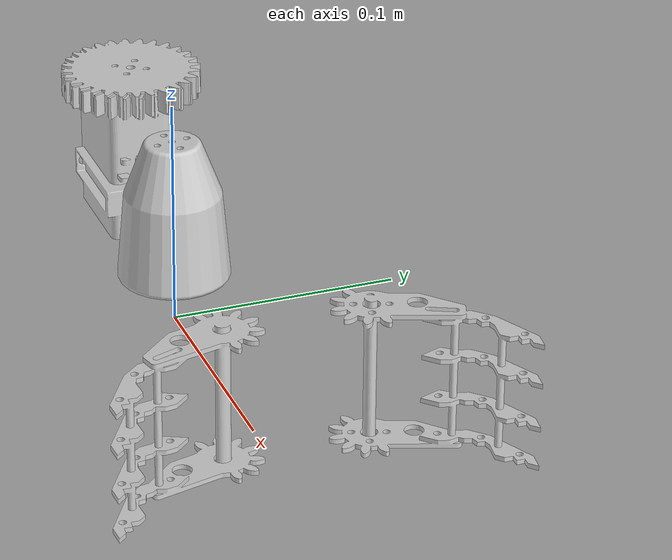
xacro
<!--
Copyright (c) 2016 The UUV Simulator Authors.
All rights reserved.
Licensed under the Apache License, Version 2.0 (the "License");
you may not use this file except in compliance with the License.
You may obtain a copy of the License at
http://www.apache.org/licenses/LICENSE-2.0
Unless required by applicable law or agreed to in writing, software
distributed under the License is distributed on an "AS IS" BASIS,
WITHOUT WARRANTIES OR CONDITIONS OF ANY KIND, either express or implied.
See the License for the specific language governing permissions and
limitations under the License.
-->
<?xml version="1.0"?>
<robot name="gripper" xmlns:xacro="http://www.ros.org/wiki/xacro">
  <xacro:include filename="$(find gripper_description)/robots/gripper_loaded.xacro" />

  <link name="world"/>
  <xacro:gripper_loaded namespace="gripper" parent="world">
    <origin xyz="0 0 0.05" rpy="0 0 0"/>
  </xacro:gripper_loaded>

  <gazebo>
    <plugin name="libgazebo_ros_control" filename="libgazebo_ros_control.so"/>
  </gazebo>
</robot>

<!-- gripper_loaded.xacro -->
<robot xmlns:xacro="http://www.ros.org/wiki/xacro">

  <xacro:include filename="$(find gripper_description)/urdf/gripper.xacro"/>

  <xacro:macro name="gripper_loaded" params="namespace parent *origin">

      <xacro:gripper namespace="${namespace}"/>
      <joint name="${namespace}/anchor_link" type="fixed">
        <parent link="${parent}"/>
        <child link="gripper_link"/>
        <xacro:insert_block name="origin"/>
      </joint>

      <gazebo>
        <plugin name="joint_state_publisher" filename="libgazebo_ros_joint_state_publisher.so">
          <jointName>gripper_link_to_left_jaw, gripper_link_to_right_jaw</jointName>
        </plugin>
      </gazebo>

  </xacro:macro>

</robot>

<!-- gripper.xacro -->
<robot xmlns:xacro="http://www.ros.org/wiki/xacro">

    <!-- Transmission Macro -->
    <xacro:macro name="simple_transmission" params="joint">
      <transmission name="${joint}_trans">
        <type>transmission_interface/SimpleTransmission</type>
        <joint name="${joint}">
          <hardwareInterface>EffortJointInterface</hardwareInterface>
        </joint>
        <actuator name="${joint}_motor">
          <hardwareInterface>EffortJointInterface</hardwareInterface>
          <mechanicalReduction>1</mechanicalReduction>
        </actuator>
      </transmission>
    </xacro:macro>

    <xacro:macro name="gripper" params="namespace">

        <!-- base link -->
        <link name="gripper_link">
            <xacro:box_inertial mass="1.0"
                        x="0.2"
                        y="0.05"
                        z="0.05">
            <origin xyz="0 0 0" rpy="0 0 0"/>
            </xacro:box_inertial>

            <visual>
                <origin xyz="0 0 0" rpy="0 0 0"/>
                <geometry>
                    <mesh filename="file://$(find gripper_description)/meshes/visual/base_link.dae" scale="1.0 1.0 1.0"/>
                </geometry>
            </visual>

            <collision>
                <origin xyz="0 0 0" rpy="0 0 0"/>
                <geometry>
                    <mesh filename="file://$(find gripper_description)/meshes/collision/base_link.dae" scale="1.0 1.0 1.0"/>
                </geometry>
            </collision>
        </link>

        <link name="left_jaw">
            <xacro:box_inertial mass="0.5"
                        x="0.1"
                        y="0.03"
                        z="0.1">
            <origin xyz="0 0 0" rpy="0 0 0"/>
            </xacro:box_inertial>

            <visual>
                <origin xyz="0 0 0" rpy="0 0 0"/>
                <geometry>
                    <mesh filename="file://$(find gripper_description)/meshes/visual/left_jaw.dae" scale="1.0 1.0 1.0"/>
                </geometry>
            </visual>

            <collision>
                <origin xyz="0 0 0" rpy="0 0 0"/>
                <geometry>
                    <mesh filename="file://$(find gripper_description)/meshes/collision/left_jaw.dae" scale="1.0 1.0 1.0"/>
                </geometry>
            </collision>
        </link>

        <joint name="gripper_link_to_left_jaw" type="revolute">
            <parent link="gripper_link"/>
            <child link="left_jaw"/>
            <origin xyz="0.15 0.03 0.0" rpy="0 0 0"/>
            <axis xyz="0 0 1"/>
            <limit lower="-1.00" upper="1.00" effort="50" velocity="0.14"/>
        </joint>

        <xacro:simple_transmission joint="gripper_link_to_left_jaw" />

        <link name="right_jaw">
            <xacro:box_inertial mass="0.5"
                        x="0.1"
                        y="0.03"
                        z="0.1">
            <origin xyz="0 0 0" rpy="0 0 0"/>
            </xacro:box_inertial>

            <visual>
                <origin xyz="0 0 0" rpy="0 0 0"/>
                <geometry>
                    <mesh filename="file://$(find gripper_description)/meshes/visual/right_jaw.dae" scale="1.0 1.0 1.0"/>
                </geometry>
            </visual>

            <collision>
                <origin xyz="0 0 0" rpy="0 0 0"/>
                <geometry>
                    <mesh filename="file://$(find gripper_description)/meshes/collision/right_jaw.dae" scale="1.0 1.0 1.0"/>
                </geometry>
            </collision>
        </link>

        <joint name="gripper_link_to_right_jaw" type="revolute">
            <parent link="gripper_link"/>
            <child link="right_jaw"/>
            <origin xyz="0.15 -0.03 0.0" rpy="0 0 0"/>
            <axis xyz="0 0 1"/>
            <limit lower="-1.0" upper="1.0" effort="50" velocity="0.14"/>
        </joint>

        <xacro:simple_transmission joint="gripper_link_to_right_jaw" />

    </xacro:macro>

</robot>
